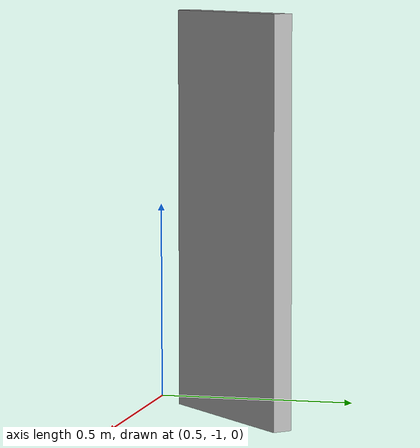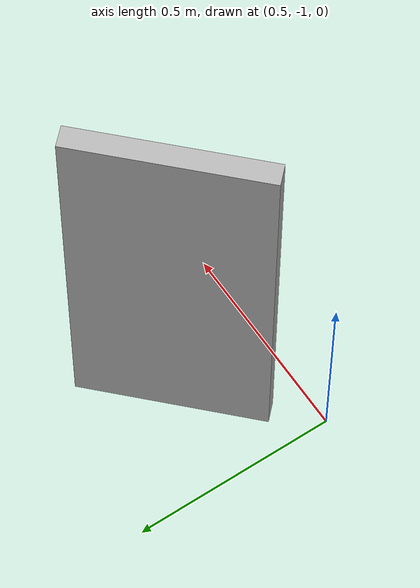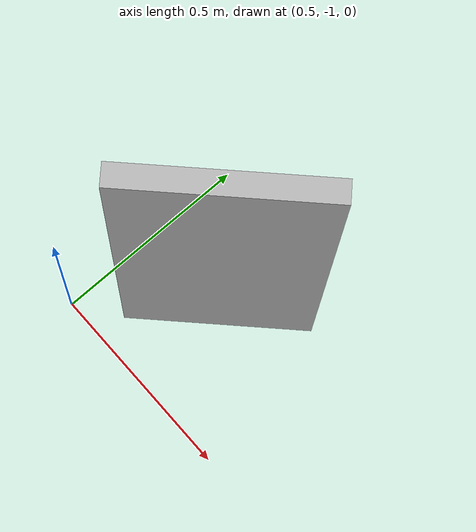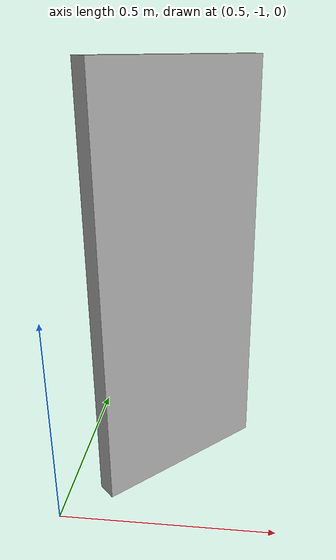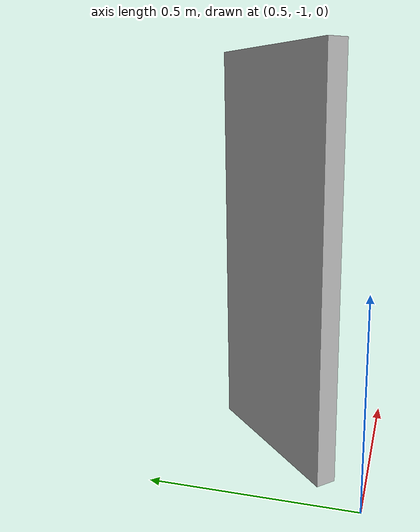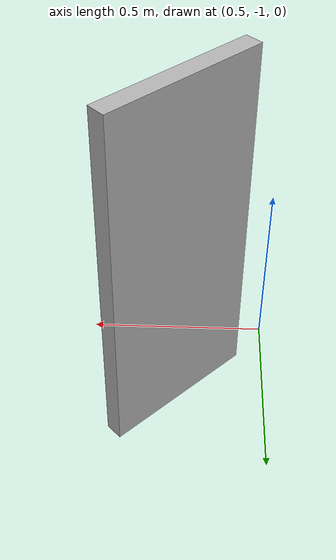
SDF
<sdf version='1.12'>
  <model name='rectangle_0'>
    <plugin filename="gz-sim-touchplugin-system"            name="gz::sim::systems::TouchPlugin">        <target>turtlebot3_burger</target>        <namespace>obstacle</namespace>        <time>0.001</time>        <enabled>true</enabled>    </plugin>    <pose>0.75 -0.75 0.5 0.0 0.0 0.78</pose>
    <link name='box_link'>
      <sensor name='sensor_contact' type='contact'>          <contact>              <collision>box_collision</collision>          </contact>      </sensor>      <inertial>
        <inertia>
          <ixx>10.024999999999999</ixx>
          <ixy>0</ixy>
          <ixz>0</ixz>
          <iyy>12.025000000000002</iyy>
          <iyz>0</iyz>
          <izz>2.0500000000000003</izz>
        </inertia>
        <mass>120</mass>
        <pose>0 0 0 0 0 0</pose>
      </inertial>
      <collision name='box_collision'>
        <geometry>
          <box>
            <size>0.45 0.05 1.0</size>
          </box>
        </geometry>
        <surface>
          <friction>
            <ode/>
          </friction>
          <bounce/>
          <contact/>
        </surface>
      </collision>
      <visual name='box_visual'>
        <geometry>
          <box>
            <size>0.45 0.05 1.0</size>
          </box>
        </geometry>
        <material>
          <ambient>0.300000012 0.300000012 0.300000012 1</ambient>
          <diffuse>0.699999988 0.699999988 0.699999988 1</diffuse>
          <specular>1 1 1 1</specular>
        </material>
      </visual>
      <pose>0 0 0 0 0 0</pose>
      <enable_wind>false</enable_wind>
    </link>
    <static>false</static>
    <self_collide>false</self_collide>
  </model>
</sdf>
